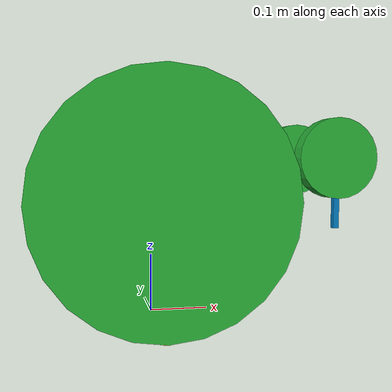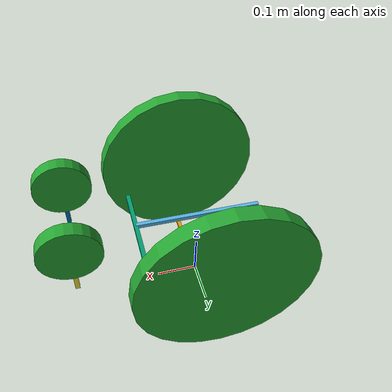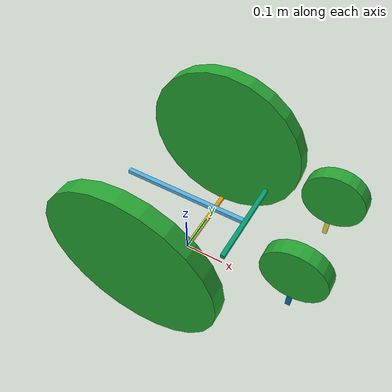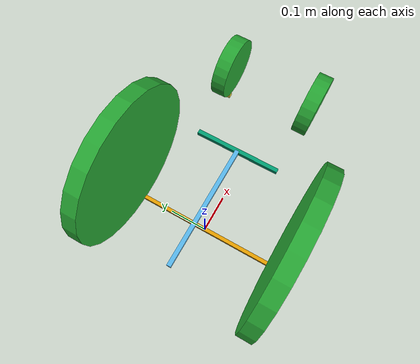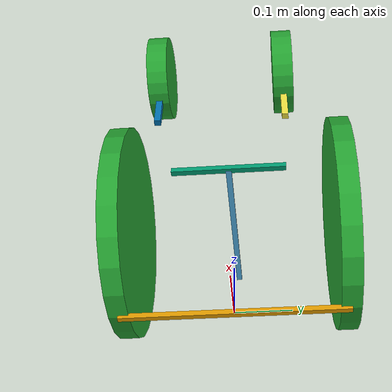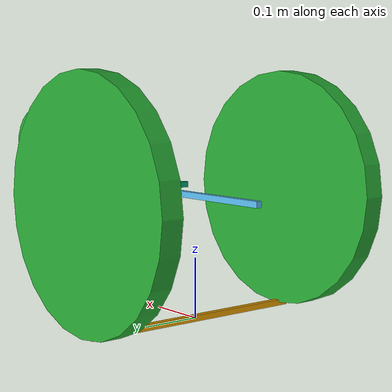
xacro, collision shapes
<?xml version='1.0'?>

<robot name="wheelchair" xmlns:xacro="http://www.ros.org/wiki/xacro" >

  <xacro:property name="cameraSize" value="0.05"/>
  <xacro:property name="cameraMass" value="0.1"/>

  <xacro:property name="PI" value="3.14" />
  <xacro:property name="PI_Half" value="1.5707" />

  <xacro:property name="chair_width" value="0.643" /> <!-- From front wheel right joint to front wheel left joint -->
  <xacro:property name="chair_length" value="0.812" /> <!-- From front wheel joint to back wheel joint -->
  <xacro:property name="chair_height" value="1.191" /> <!-- From front wheel joint to head rest -->
  <xacro:property name="chair_weight" value="10.0" />

  <xacro:property name="legs_width" value="0.4064" />
  <xacro:property name="legs_length" value="0.4064" />
  <xacro:property name="legs_height" value="0.4064" />
  <xacro:property name="legs_weight" value="2.0" />

  <xacro:property name="main_wheel_length" value="0.0356884" />
  <xacro:property name="main_wheel_radius" value="0.201784" />
  <xacro:property name="main_wheel_weight" value="3.0" />

  <xacro:property name="small_wheel_radius" value="0.068" />
  <xacro:property name="small_wheel_length" value="0.032" />
  <xacro:property name="small_wheel_weight" value="1.0" />

  <xacro:include filename="$(find robot_sim)/urdf/materials.xacro" />
  <xacro:include filename="$(find robot_sim)/urdf/macros.xacro" />

  <link name='base_chassis'>
    <pose>0 0 0.201784 0 0 0</pose>
    <inertial>
      <mass value="10.0"/>
      <origin xyz="0 0 0.201784" rpy=" 0 0 0"/>
      <box_inertia m="2" x="0.01" y="0.01" z ="0.406054" />
    </inertial>
    <collision name='collision'>
      <geometry>
        <box size="0.01 0.406054 0.01"/>
      </geometry>
    </collision>
    <visual>
      <origin xyz="0 0 0" rpy="0 0 -3.14"/>
      <geometry>
         <mesh filename="package://robot_sim/meshes/wheelchair_chasis.stl" scale="0.01 0.01 0.01"/>
      </geometry>
  </visual>
  <visual>
    <origin xyz="0 0 0.201784" rpy="0 0 0"/>
    <geometry>
      <box size="0.01 0.406054 0.01"/>
    </geometry>
</visual>
</link>
  <chassis name="os" xyz="${3/4*main_wheel_radius} 0.01 0.01" rpy="0 0 0" m="2" chassisLength="${3/2*main_wheel_radius}" chassisWidth="0.01" chassisHeight="0.01"/>
  <link_joint parent="base_chassis" child ="os_chassis" xyz="0 0 ${main_wheel_radius}" rpy="0 0 0" />

  <chassis name="os1" xyz="${3/4*main_wheel_radius} 0 ${main_wheel_radius}" rpy="0 0 0" m="2" chassisLength="0.01" chassisWidth="${2*main_wheel_radius - 0.2}" chassisHeight="0.01"/>
  <link_joint parent="os_chassis" child ="os1_chassis" xyz="${3/4*main_wheel_radius} 0 0" rpy="0 0 0" />

  <chassis name="os2" xyz="0 0 ${-main_wheel_radius/4}" rpy="0 0 0" m="2" chassisLength="0.01" chassisWidth="0.01" chassisHeight="${main_wheel_radius/2}"/>
  <link_joint parent="os1_chassis" child ="os2_chassis" xyz="${3/4*main_wheel_radius} ${main_wheel_radius/2} 0" rpy="0 0 0" />
  <chassis name="os3" xyz="0 0 ${-main_wheel_radius/4}" rpy="0 0 0" m="2" chassisLength="0.01" chassisWidth="0.01" chassisHeight="${main_wheel_radius/2}"/>
  <link_joint parent="os1_chassis" child ="os3_chassis" xyz="${3/4*main_wheel_radius} ${-main_wheel_radius/2} 0" rpy="0 0 0" />

  <wheel  lr="l" tY="0.02" xyz=" 0 0 0" rpy="${-pi/2} 0 0" wheelWidth="${main_wheel_length}" wheelRadius="${main_wheel_radius}" wheelMass="${main_wheel_weight}" meshFile="wheelchair_wheel"/>
  <wheel_joint parent="base_chassis" child ="l_wheel" xyz="0 ${main_wheel_radius} ${main_wheel_radius}" rpy="0 0 0" />
  <wheel  lr="r" tY="0.02" xyz=" 0 0 0" rpy="${pi/2} 0 0" wheelWidth="${main_wheel_length}" wheelRadius="${main_wheel_radius}" wheelMass="${main_wheel_weight}" meshFile="wheelchair_wheel"/>
  <wheel_joint parent="base_chassis" child ="r_wheel" xyz="0 ${-main_wheel_radius} ${main_wheel_radius}" rpy="0 0 0" />

  <wheel  lr="lf" tY="0.001" xyz=" 0 0 0" rpy="${pi/2} 0 0" wheelWidth="${small_wheel_length}" wheelRadius="${small_wheel_radius}" wheelMass="${small_wheel_weight}" meshFile="wheelchair_wheel_front"/>
  <wheel_joint parent="os2_chassis" child ="lf_wheel" xyz="0 ${-main_wheel_radius} ${small_wheel_radius}" rpy="0 0 0" />

  <wheel  lr="lr" tY="0.001" xyz=" 0 0 0" rpy="${pi/2} 0 0" wheelWidth="${small_wheel_length}" wheelRadius="${small_wheel_radius}" wheelMass="${small_wheel_weight}" meshFile="wheelchair_wheel_front"/>
  <wheel_joint parent="os3_chassis" child ="lr_wheel" xyz="0 ${main_wheel_radius} ${small_wheel_radius}" rpy="0 0 0" />

  <gazebo>
    <plugin name="differential_drive_controller" filename="libgazebo_ros_diff_drive.so">
      <legacyMode>false</legacyMode>
      <alwaysOn>true</alwaysOn>
      <updateRate>20</updateRate>
      <leftJoint>base_chassis_l_wheel_joint</leftJoint>
      <rightJoint>base_chassis_r_wheel_joint</rightJoint>
      <wheelSeparation>0.4</wheelSeparation>
      <wheelDiameter>0.4</wheelDiameter>
      <torque>20</torque>
      <commandTopic>cmd_vel</commandTopic>
      <odometryTopic>odom</odometryTopic>
      <odometryFrame>odom</odometryFrame>
      <robotBaseFrame>base_chassis</robotBaseFrame>
    </plugin>
  </gazebo>

  <gazebo reference="chassis">
      <material name="green">
    	<color rgba="0.0 0.8 0.0 1.0"/>
      </material>
  </gazebo>

</robot>

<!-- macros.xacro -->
<robot name="macro" xmlns:xacro="http://www.ros.org/wiki/xacro">

  <xacro:macro name="cylinder_inertia" params="m r h">
    <inertia  ixx="${m*(3*r*r+h*h)/12}" ixy = "0" ixz = "0"
      iyy="${m*(3*r*r+h*h)/12}" iyz = "0"
      izz="${m*r*r/2}"
    />
  </xacro:macro>

  <xacro:macro name="box_inertia" params="m x y z">
    <inertia  ixx="${m*(y*y+z*z)/12}" ixy = "0" ixz = "0"
      iyy="${m*(x*x+z*z)/12}" iyz = "0"
      izz="${m*(x*x+z*z)/12}"
    />
  </xacro:macro>

  <xacro:macro name="sphere_inertia" params="m r">
    <inertia  ixx="${2*m*r*r/5}" ixy = "0" ixz = "0"
      iyy="${2*m*r*r/5}" iyz = "0"
      izz="${2*m*r*r/5}"
    />
  </xacro:macro>

  <xacro:macro name="wheel_joint" params="parent child xyz rpy">
    <joint type="continuous" name="${parent}_${child}_joint}">
      <origin xyz="${xyz}" rpy="${rpy}"/>
      <child link="${child}"/>
      <parent link="${parent}"/>
      <axis xyz="0 1 0" rpy="0 0 0"/>
      <limit effort="100" velocity="100"/>
      <joint_properties damping="0.0" friction="0.0"/>
    </joint>
  </xacro:macro>

  <xacro:macro name="wheel" params="lr tY xyz rpy wheelWidth wheelRadius wheelMass meshFile">
    <link name="${lr}_wheel">
      <collision name="${lr}_wheel_collision">
        <origin xyz="${xyz}" rpy="${rpy}" />
        <geometry>
          <cylinder length="${wheelWidth}" radius="${wheelRadius}"/>
        </geometry>
      </collision>

      <visual name="${lr}_wheel_visual">
        <transparency>0.1</transparency>
        <origin xyz="${xyz}" rpy="${rpy}" />
        <geometry>
          <cylinder length="${wheelWidth - tY}" radius="${wheelRadius}"/>
        </geometry>

        <material name="green"/>
      </visual>
      <visual name="${lr}_wheel_visual_mesh">
        <origin xyz="${xyz}" rpy="${rpy}" />
        <geometry>
          <mesh filename="package://robot_sim/meshes/${meshFile}.stl" scale="0.01 0.01 0.01"/>
        </geometry>
      </visual>
      <inertial name="${lr}_wheel_visual_intertial">
        <origin xyz="${xyz}" rpy="0 ${pi/2} ${pi/2}" />
        <mass value="${wheelMass}"/>
        <cylinder_inertia m="${wheelMass}" r="${wheelRadius}" h="${wheelWidth}"/>
      </inertial>
    </link>
  </xacro:macro>

<xacro:macro name="chassis" params="name xyz rpy m chassisLength chassisWidth chassisHeight">
    <link name="${name}_chassis">
      <collision name='${name}_chassis_collision'>
        <geometry>
          <box size="${chassisLength} ${chassisWidth} ${chassisHeight}"/>
        </geometry>
      </collision>
      <visual name='${name}_chassis_visual'>
        <origin xyz="${xyz}" rpy="${rpy}" />
          <geometry>
            <box size="${chassisLength} ${chassisWidth} ${chassisHeight}"/>
        </geometry>
      </visual>
      <inertial name="${name}_chassis_intertial">
        <origin xyz="${xyz}" rpy="${rpy}" />
        <mass value="${m}"/>
        <box_inertia m="${m}" x="${chassisLength}" y="${chassisWidth}" z ="${chassisHeight}" />
      </inertial>
    </link>
  </xacro:macro>
  <xacro:macro name="link_joint" params="parent child xyz rpy">
    <joint type="fixed" name="${parent}_${child}_joint}">
      <origin xyz="${xyz}" rpy="${rpy}"/>
      <child link="${child}"/>
      <parent link="${parent}"/>
    </joint>
  </xacro:macro>

</robot>
